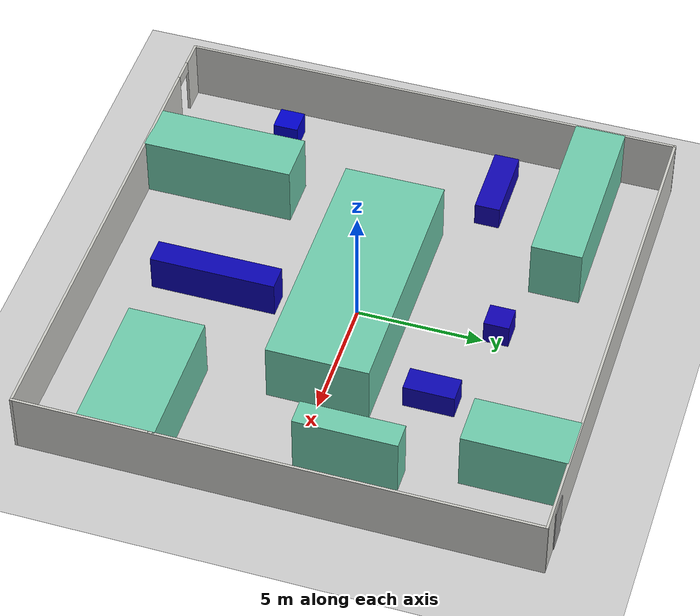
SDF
<sdf version="1.7">
 <world name="default">
  <light name="sun" type="directional">
   <pose>0 0 10 0 -0 0</pose>
   <diffuse>0.8 0.8 0.8 1</diffuse>
   <specular>0.2 0.2 0.2 1</specular>
   <attenuation>
    <range>1000</range>
    <constant>0.9</constant>
    <linear>0.01</linear>
    <quadratic>0.001</quadratic>
   </attenuation>
   <direction>-0.5 0.1 -0.9</direction>
   <spot><inner_angle>0</inner_angle><outer_angle>0</outer_angle><falloff>0</falloff></spot>
  </light>
  <model name="ground_plane">
   <static>1</static>
   <link name="link">
    <collision name="collision">
     <geometry><plane><normal>0 0 1</normal><size>100 100</size></plane></geometry>
     <surface>
      <contact><collide_bitmask>65535</collide_bitmask></contact>
      <friction><ode><mu>100</mu><mu2>50</mu2></ode></friction>
     </surface>
    </collision>
    <visual name="visual">
     <cast_shadows>0</cast_shadows>
     <geometry><plane><normal>0 0 1</normal><size>100 100</size></plane></geometry>
     <material>
      <script><uri>file://media/materials/scripts/gazebo.material</uri><name>Gazebo/Grey</name></script>
     </material>
    </visual>
   </link>
  </model>
  <gravity>0 0 -9.8</gravity>
  <magnetic_field>6e-06 2.3e-05 -4.2e-05</magnetic_field>
  <atmosphere type="adiabatic"/>
  <physics type="ode">
   <max_step_size>0.001</max_step_size>
   <real_time_factor>1</real_time_factor>
   <real_time_update_rate>1000</real_time_update_rate>
  </physics>
  <scene><ambient>0.4 0.4 0.4 1</ambient><background>0.7 0.7 0.7 1</background><shadows>1</shadows></scene>
  <audio><device>default</device></audio>
  <spherical_coordinates>
   <surface_model>EARTH_WGS84</surface_model>
   <latitude_deg>0</latitude_deg>
   <longitude_deg>0</longitude_deg>
   <elevation>0</elevation>
   <heading_deg>0</heading_deg>
  </spherical_coordinates>
  <model name="map_obstacle">
   <link name="Door_1">
    <collision name="Door_1_Collision">
     <geometry><box><size>0.9 0.17 2</size></box></geometry>
     <pose>0 0 1 0 -0 0</pose>
    </collision>
    <visual name="Door_1_Visual">
     <pose>0 0 1 0 -0 0</pose>
     <geometry><box><size>0.9 0.17 2</size></box></geometry>
     <material>
      <script><uri>file://media/materials/scripts/gazebo.material</uri><name>Gazebo/Grey</name></script>
     </material>
    </visual>
    <pose>8.5 10 0 0 -0 0</pose>
   </link>
   <link name="Wall_0">
    <pose>0 -10 0 0 -0 0</pose>
    <visual name="Wall_0_Visual_0">
     <pose>-9.5 0 1.25 0 -0 0</pose>
     <geometry><box><size>1.1 0.1 2.5</size></box></geometry>
     <material>
      <script><uri>file://media/materials/scripts/gazebo.material</uri><name>Gazebo/CeilingTiled</name></script>
      <ambient>0.921569 0.807843 0.615686 1</ambient>
     </material>
     <meta><layer>0</layer></meta>
    </visual>
    <collision name="Wall_0_Collision_0">
     <geometry><box><size>1.1 0.1 2.5</size></box></geometry>
     <pose>-9.5 0 1.25 0 -0 0</pose>
    </collision>
    <visual name="Wall_0_Visual_1">
     <pose>1 0 1.25 0 -0 0</pose>
     <geometry><box><size>18.1 0.1 2.5</size></box></geometry>
     <material>
      <script><uri>file://media/materials/scripts/gazebo.material</uri><name>Gazebo/CeilingTiled</name></script>
      <ambient>0.921569 0.807843 0.615686 1</ambient>
     </material>
     <meta><layer>0</layer></meta>
    </visual>
    <collision name="Wall_0_Collision_1">
     <geometry><box><size>18.1 0.1 2.5</size></box></geometry>
     <pose>1 0 1.25 0 -0 0</pose>
    </collision>
    <visual name="Wall_0_Visual_2">
     <pose>-8.5 0 2.25 0 -0 0</pose>
     <geometry><box><size>0.9 0.1 0.5</size></box></geometry>
     <material>
      <script><uri>file://media/materials/scripts/gazebo.material</uri><name>Gazebo/CeilingTiled</name></script>
      <ambient>0.921569 0.807843 0.615686 1</ambient>
     </material>
     <meta><layer>0</layer></meta>
    </visual>
    <collision name="Wall_0_Collision_2">
     <geometry><box><size>0.9 0.1 0.5</size></box></geometry>
     <pose>-8.5 0 2.25 0 -0 0</pose>
    </collision>
   </link>
   <link name="Wall_10">
    <collision name="Wall_10_Collision">
     <geometry><box><size>10 4 2.5</size></box></geometry>
     <pose>0 0 1.25 0 -0 0</pose>
    </collision>
    <visual name="Wall_10_Visual">
     <pose>0 0 1.25 0 -0 0</pose>
     <geometry><box><size>10 4 2.5</size></box></geometry>
     <material>
      <script><uri>file://media/materials/scripts/gazebo.material</uri><name>Gazebo/Grey</name></script>
      <ambient>0.435294 0.796078 0.67451 1</ambient>
     </material>
     <meta><layer>0</layer></meta>
    </visual>
   </link>
   <link name="Wall_12">
    <collision name="Wall_12_Collision">
     <geometry><box><size>7 2 2.5</size></box></geometry>
     <pose>0 0 1.25 0 -0 0</pose>
    </collision>
    <visual name="Wall_12_Visual">
     <pose>0 0 1.25 0 -0 0</pose>
     <geometry><box><size>7 2 2.5</size></box></geometry>
     <material>
      <script><uri>file://media/materials/scripts/gazebo.material</uri><name>Gazebo/Grey</name></script>
      <ambient>0.435294 0.796078 0.67451 1</ambient>
     </material>
     <meta><layer>0</layer></meta>
    </visual>
    <pose>-6.5 7 0 0 -0 0</pose>
   </link>
   <link name="Wall_14">
    <collision name="Wall_14_Collision">
     <geometry><box><size>4 2 2.5</size></box></geometry>
     <pose>0 0 1.25 0 -0 0</pose>
    </collision>
    <visual name="Wall_14_Visual">
     <pose>0 0 1.25 0 -0 0</pose>
     <geometry><box><size>4 2 2.5</size></box></geometry>
     <material>
      <script><uri>file://media/materials/scripts/gazebo.material</uri><name>Gazebo/Grey</name></script>
      <ambient>0.435294 0.796078 0.67451 1</ambient>
     </material>
     <meta><layer>0</layer></meta>
    </visual>
    <pose>6 8 0 0 -0 -1.5708</pose>
   </link>
   <link name="Wall_16">
    <collision name="Wall_16_Collision">
     <geometry><box><size>5.5 3 2.5</size></box></geometry>
     <pose>0 0 1.25 0 -0 0</pose>
    </collision>
    <visual name="Wall_16_Visual">
     <pose>0 0 1.25 0 -0 0</pose>
     <geometry><box><size>5.5 3 2.5</size></box></geometry>
     <material>
      <script><uri>file://media/materials/scripts/gazebo.material</uri><name>Gazebo/Grey</name></script>
      <ambient>0.435294 0.796078 0.67451 1</ambient>
     </material>
     <meta><layer>0</layer></meta>
    </visual>
    <pose>7.25 -6 0 0 -0 3.14159</pose>
   </link>
   <link name="Wall_18">
    <collision name="Wall_18_Collision">
     <geometry><box><size>4 1 2.5</size></box></geometry>
     <pose>0 0 1.25 0 -0 0</pose>
    </collision>
    <visual name="Wall_18_Visual">
     <pose>0 0 1.25 0 -0 0</pose>
     <geometry><box><size>4 1 2.5</size></box></geometry>
     <material>
      <script><uri>file://media/materials/scripts/gazebo.material</uri><name>Gazebo/Grey</name></script>
      <ambient>0.435294 0.796078 0.67451 1</ambient>
     </material>
     <meta><layer>0</layer></meta>
    </visual>
    <pose>7.5 2 0 0 -0 -1.5708</pose>
   </link>
   <link name="Wall_2">
    <collision name="Wall_2_Collision">
     <geometry><box><size>20.1 0.1 2.5</size></box></geometry>
     <pose>0 0 1.25 0 -0 0</pose>
    </collision>
    <visual name="Wall_2_Visual">
     <pose>0 0 1.25 0 -0 0</pose>
     <geometry><box><size>20.1 0.1 2.5</size></box></geometry>
     <material>
      <script><uri>file://media/materials/scripts/gazebo.material</uri><name>Gazebo/CeilingTiled</name></script>
      <ambient>0.921569 0.807843 0.615686 1</ambient>
     </material>
     <meta><layer>0</layer></meta>
    </visual>
    <pose>-10 0 0 0 -0 1.5708</pose>
   </link>
   <link name="Wall_4">
    <collision name="Wall_4_Collision">
     <geometry><box><size>20.1 0.1 2.5</size></box></geometry>
     <pose>0 0 1.25 0 -0 0</pose>
    </collision>
    <visual name="Wall_4_Visual">
     <pose>0 0 1.25 0 -0 0</pose>
     <geometry><box><size>20.1 0.1 2.5</size></box></geometry>
     <material>
      <script><uri>file://media/materials/scripts/gazebo.material</uri><name>Gazebo/CeilingTiled</name></script>
      <ambient>0.921569 0.807843 0.615686 1</ambient>
     </material>
     <meta><layer>0</layer></meta>
    </visual>
    <pose>0 10 0 0 -0 0</pose>
   </link>
   <link name="Wall_6">
    <collision name="Wall_6_Collision">
     <geometry><box><size>20.1 0.1 2.5</size></box></geometry>
     <pose>0 0 1.25 0 -0 0</pose>
    </collision>
    <visual name="Wall_6_Visual">
     <pose>0 0 1.25 0 -0 0</pose>
     <geometry><box><size>20.1 0.1 2.5</size></box></geometry>
     <material>
      <script><uri>file://media/materials/scripts/gazebo.material</uri><name>Gazebo/CeilingTiled</name></script>
      <ambient>0.921569 0.807843 0.615686 1</ambient>
     </material>
     <meta><layer>0</layer></meta>
    </visual>
    <pose>10 0 0 0 -0 -1.5708</pose>
   </link>
   <link name="Wall_8">
    <collision name="Wall_8_Collision">
     <geometry><box><size>6 2 2.5</size></box></geometry>
     <pose>0 0 1.25 0 -0 0</pose>
    </collision>
    <visual name="Wall_8_Visual">
     <pose>0 0 1.25 0 -0 0</pose>
     <geometry><box><size>6 2 2.5</size></box></geometry>
     <material>
      <script><uri>file://media/materials/scripts/gazebo.material</uri><name>Gazebo/Grey</name></script>
      <ambient>0.435294 0.796078 0.67451 1</ambient>
     </material>
     <meta><layer>0</layer></meta>
    </visual>
    <pose>-5 -7 0 0 -0 1.5708</pose>
   </link>
   <static>1</static>
  </model>
  <model name="boxes">
   <link name="link_0">
    <inertial>
     <mass>1</mass>
     <inertia>
      <ixx>0.166667</ixx>
      <ixy>0</ixy>
      <ixz>0</ixz>
      <iyy>0.166667</iyy>
      <iyz>0</iyz>
      <izz>0.166667</izz>
     </inertia>
    </inertial>
    <pose>-6 -5.9 0 0 -0 0</pose>
    <visual name="visual">
     <geometry><box><size>1 1 1</size></box></geometry>
     <material>
      <lighting>1</lighting>
      <script><uri>file://media/materials/scripts/gazebo.material</uri><name>Gazebo/Grey</name></script>
      <shader type="pixel"><normal_map>__default__</normal_map></shader>
      <ambient>0 0 0.243 1</ambient>
      <diffuse>0 0 0.8 1</diffuse>
      <specular>0 0 0.008 1</specular>
      <emissive>0 0 0 1</emissive>
     </material>
    </visual>
    <collision name="collision">
     <geometry><box><size>1 1 1</size></box></geometry>
     <surface>
      <friction>
       <ode><mu>1</mu><mu2>1</mu2><fdir1>0 0 0</fdir1><slip1>0</slip1><slip2>0</slip2></ode>
       <torsional>
        <coefficient>1</coefficient>
        <patch_radius>0</patch_radius>
        <surface_radius>0</surface_radius>
        <use_patch_radius>1</use_patch_radius>
        <ode><slip>0</slip></ode>
       </torsional>
      </friction>
      <bounce><restitution_coefficient>0</restitution_coefficient><threshold>1e+06</threshold></bounce>
      <contact>
       <collide_without_contact>0</collide_without_contact>
       <collide_without_contact_bitmask>1</collide_without_contact_bitmask>
       <collide_bitmask>1</collide_bitmask>
       <ode>
        <soft_cfm>0</soft_cfm>
        <soft_erp>0.2</soft_erp>
        <kp>1e+13</kp>
        <kd>1</kd>
        <max_vel>0.01</max_vel>
        <min_depth>0</min_depth>
       </ode>
       <bullet>
        <split_impulse>1</split_impulse>
        <split_impulse_penetration_threshold>-0.01</split_impulse_penetration_threshold>
        <soft_cfm>0</soft_cfm>
        <soft_erp>0.2</soft_erp>
        <kp>1e+13</kp>
        <kd>1</kd>
       </bullet>
      </contact>
     </surface>
    </collision>
   </link>
   <link name="link_1">
    <inertial>
     <mass>1</mass>
     <inertia>
      <ixx>0.166667</ixx>
      <ixy>0</ixy>
      <ixz>0</ixz>
      <iyy>0.166667</iyy>
      <iyz>0</iyz>
      <izz>0.166667</izz>
     </inertia>
    </inertial>
    <pose>2 5.1 0 0 -0 0</pose>
    <visual name="visual">
     <geometry><box><size>1 1 1</size></box></geometry>
     <material>
      <lighting>1</lighting>
      <script><uri>file://media/materials/scripts/gazebo.material</uri><name>Gazebo/Grey</name></script>
      <shader type="pixel"><normal_map>__default__</normal_map></shader>
      <ambient>0 0.02 0.298 1</ambient>
      <diffuse>0.059 0 0.698 1</diffuse>
      <specular>0 0 0.008 1</specular>
      <emissive>0 0 0 1</emissive>
     </material>
    </visual>
    <collision name="collision">
     <geometry><box><size>1 1 1</size></box></geometry>
     <surface>
      <friction>
       <ode><mu>1</mu><mu2>1</mu2><fdir1>0 0 0</fdir1><slip1>0</slip1><slip2>0</slip2></ode>
       <torsional>
        <coefficient>1</coefficient>
        <patch_radius>0</patch_radius>
        <surface_radius>0</surface_radius>
        <use_patch_radius>1</use_patch_radius>
        <ode><slip>0</slip></ode>
       </torsional>
      </friction>
      <bounce><restitution_coefficient>0</restitution_coefficient><threshold>1e+06</threshold></bounce>
      <contact>
       <collide_without_contact>0</collide_without_contact>
       <collide_without_contact_bitmask>1</collide_without_contact_bitmask>
       <collide_bitmask>1</collide_bitmask>
       <ode>
        <soft_cfm>0</soft_cfm>
        <soft_erp>0.2</soft_erp>
        <kp>1e+13</kp>
        <kd>1</kd>
        <max_vel>0.01</max_vel>
        <min_depth>0</min_depth>
       </ode>
       <bullet>
        <split_impulse>1</split_impulse>
        <split_impulse_penetration_threshold>-0.01</split_impulse_penetration_threshold>
        <soft_cfm>0</soft_cfm>
        <soft_erp>0.2</soft_erp>
        <kp>1e+13</kp>
        <kd>1</kd>
       </bullet>
      </contact>
     </surface>
    </collision>
   </link>
   <link name="link_2">
    <inertial>
     <mass>1</mass>
     <inertia>
      <ixx>0.166667</ixx>
      <ixy>0</ixy>
      <ixz>0</ixz>
      <iyy>0.166667</iyy>
      <iyz>0</iyz>
      <izz>0.166667</izz>
     </inertia>
    </inertial>
    <pose>-5 3.1 0 0 -0 0</pose>
    <visual name="visual">
     <geometry><box><size>3 1 1</size></box></geometry>
     <material>
      <lighting>1</lighting>
      <script><uri>file://media/materials/scripts/gazebo.material</uri><name>Gazebo/Grey</name></script>
      <shader type="pixel"><normal_map>__default__</normal_map></shader>
      <ambient>0.027 0.004 0.298 1</ambient>
      <diffuse>0.059 0.012 0.698 1</diffuse>
      <specular>0 0 0.008 1</specular>
      <emissive>0 0 0 1</emissive>
     </material>
    </visual>
    <collision name="collision">
     <geometry><box><size>3 1 1</size></box></geometry>
     <surface>
      <friction>
       <ode><mu>1</mu><mu2>1</mu2><fdir1>0 0 0</fdir1><slip1>0</slip1><slip2>0</slip2></ode>
       <torsional>
        <coefficient>1</coefficient>
        <patch_radius>0</patch_radius>
        <surface_radius>0</surface_radius>
        <use_patch_radius>1</use_patch_radius>
        <ode><slip>0</slip></ode>
       </torsional>
      </friction>
      <bounce><restitution_coefficient>0</restitution_coefficient><threshold>1e+06</threshold></bounce>
      <contact>
       <collide_without_contact>0</collide_without_contact>
       <collide_without_contact_bitmask>1</collide_without_contact_bitmask>
       <collide_bitmask>1</collide_bitmask>
       <ode>
        <soft_cfm>0</soft_cfm>
        <soft_erp>0.2</soft_erp>
        <kp>1e+13</kp>
        <kd>1</kd>
        <max_vel>0.01</max_vel>
        <min_depth>0</min_depth>
       </ode>
       <bullet>
        <split_impulse>1</split_impulse>
        <split_impulse_penetration_threshold>-0.01</split_impulse_penetration_threshold>
        <soft_cfm>0</soft_cfm>
        <soft_erp>0.2</soft_erp>
        <kp>1e+13</kp>
        <kd>1</kd>
       </bullet>
      </contact>
     </surface>
    </collision>
   </link>
   <link name="link_3">
    <inertial>
     <mass>1</mass>
     <inertia>
      <ixx>0.166667</ixx>
      <ixy>0</ixy>
      <ixz>0</ixz>
      <iyy>0.166667</iyy>
      <iyz>0</iyz>
      <izz>0.166667</izz>
     </inertia>
    </inertial>
    <pose>3 -5.9 0 0 -0 0</pose>
    <visual name="visual">
     <geometry><box><size>1 5 2</size></box></geometry>
     <material>
      <lighting>1</lighting>
      <script><uri>file://media/materials/scripts/gazebo.material</uri><name>Gazebo/Grey</name></script>
      <shader type="pixel"><normal_map>__default__</normal_map></shader>
      <ambient>0.004 0.004 0.298 1</ambient>
      <diffuse>0.031 0.008 0.698 1</diffuse>
      <specular>0 0 0.008 1</specular>
      <emissive>0 0 0 1</emissive>
     </material>
    </visual>
    <collision name="collision">
     <geometry><box><size>1 5 2</size></box></geometry>
     <surface>
      <friction>
       <ode><mu>1</mu><mu2>1</mu2><fdir1>0 0 0</fdir1><slip1>0</slip1><slip2>0</slip2></ode>
       <torsional>
        <coefficient>1</coefficient>
        <patch_radius>0</patch_radius>
        <surface_radius>0</surface_radius>
        <use_patch_radius>1</use_patch_radius>
        <ode><slip>0</slip></ode>
       </torsional>
      </friction>
      <bounce><restitution_coefficient>0</restitution_coefficient><threshold>1e+06</threshold></bounce>
      <contact>
       <collide_without_contact>0</collide_without_contact>
       <collide_without_contact_bitmask>1</collide_without_contact_bitmask>
       <collide_bitmask>1</collide_bitmask>
       <ode>
        <soft_cfm>0</soft_cfm>
        <soft_erp>0.2</soft_erp>
        <kp>1e+13</kp>
        <kd>1</kd>
        <max_vel>0.01</max_vel>
        <min_depth>0</min_depth>
       </ode>
       <bullet>
        <split_impulse>1</split_impulse>
        <split_impulse_penetration_threshold>-0.01</split_impulse_penetration_threshold>
        <soft_cfm>0</soft_cfm>
        <soft_erp>0.2</soft_erp>
        <kp>1e+13</kp>
        <kd>1</kd>
       </bullet>
      </contact>
     </surface>
    </collision>
   </link>
   <link name="link_4">
    <inertial>
     <mass>1</mass>
     <inertia>
      <ixx>0.166667</ixx>
      <ixy>0</ixy>
      <ixz>0</ixz>
      <iyy>0.166667</iyy>
      <iyz>0</iyz>
      <izz>0.166667</izz>
     </inertia>
    </inertial>
    <pose>6 3.6 0 0 -0 0</pose>
    <visual name="visual">
     <geometry><box><size>1 2 1</size></box></geometry>
     <material>
      <lighting>1</lighting>
      <script><uri>file://media/materials/scripts/gazebo.material</uri><name>Gazebo/Grey</name></script>
      <shader type="pixel"><normal_map>__default__</normal_map></shader>
      <ambient>0.008 0.024 0.298 1</ambient>
      <diffuse>0.043 0.02 0.698 1</diffuse>
      <specular>0 0 0.008 1</specular>
      <emissive>0 0 0 1</emissive>
     </material>
    </visual>
    <collision name="collision">
     <geometry><box><size>1 2 1</size></box></geometry>
     <surface>
      <friction>
       <ode><mu>1</mu><mu2>1</mu2><fdir1>0 0 0</fdir1><slip1>0</slip1><slip2>0</slip2></ode>
       <torsional>
        <coefficient>1</coefficient>
        <patch_radius>0</patch_radius>
        <surface_radius>0</surface_radius>
        <use_patch_radius>1</use_patch_radius>
        <ode><slip>0</slip></ode>
       </torsional>
      </friction>
      <bounce><restitution_coefficient>0</restitution_coefficient><threshold>1e+06</threshold></bounce>
      <contact>
       <collide_without_contact>0</collide_without_contact>
       <collide_without_contact_bitmask>1</collide_without_contact_bitmask>
       <collide_bitmask>1</collide_bitmask>
       <ode>
        <soft_cfm>0</soft_cfm>
        <soft_erp>0.2</soft_erp>
        <kp>1e+13</kp>
        <kd>1</kd>
        <max_vel>0.01</max_vel>
        <min_depth>0</min_depth>
       </ode>
       <bullet>
        <split_impulse>1</split_impulse>
        <split_impulse_penetration_threshold>-0.01</split_impulse_penetration_threshold>
        <soft_cfm>0</soft_cfm>
        <soft_erp>0.2</soft_erp>
        <kp>1e+13</kp>
        <kd>1</kd>
       </bullet>
      </contact>
     </surface>
    </collision>
   </link>
   <static>0</static>
   <pose>-2.5 0.4 0.5 0 -0 0</pose>
  </model>
 </world>
</sdf>
